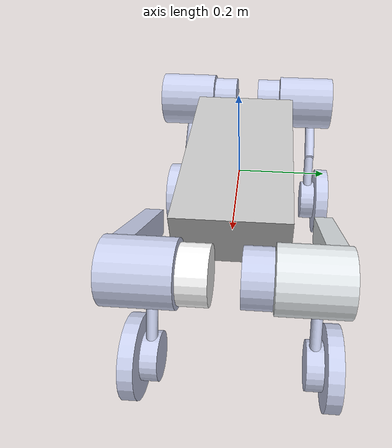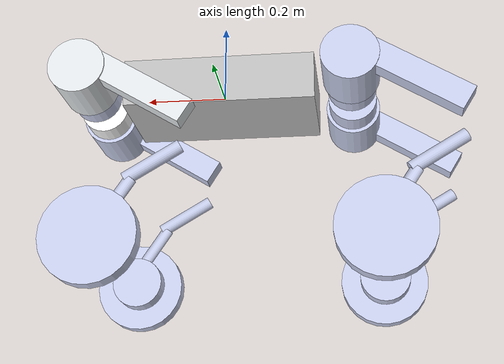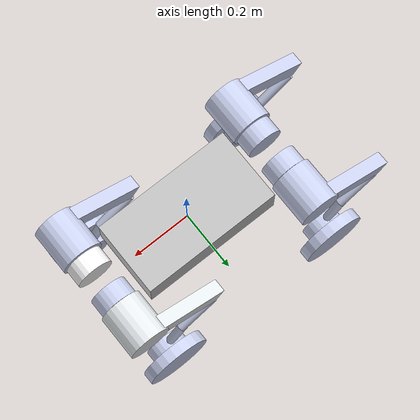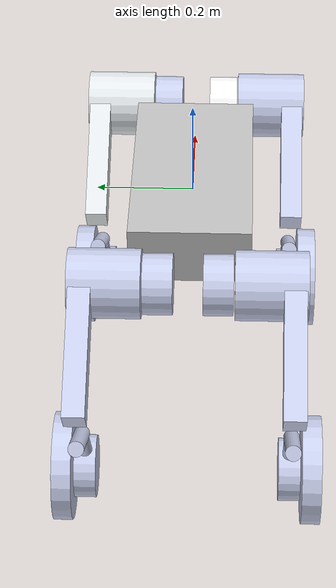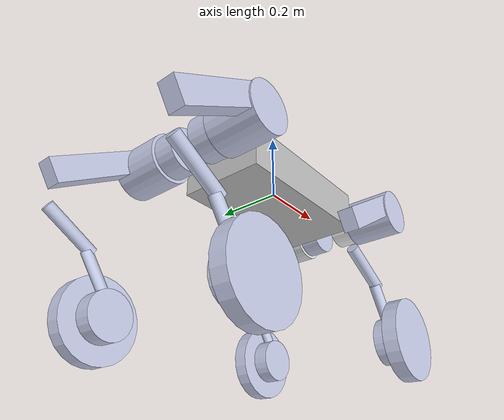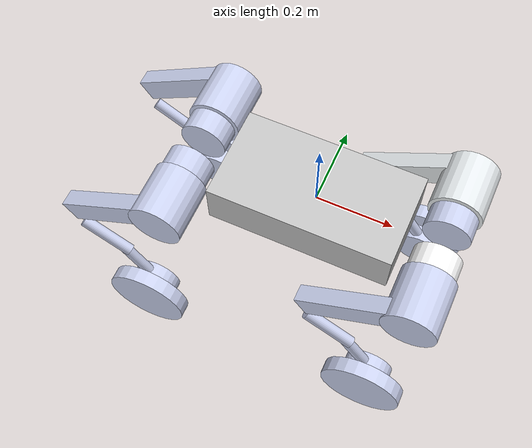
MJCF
<mujoco model="dogurdf">
  <compiler angle="radian"/>

  <worldbody>
    <geom size="0.237 0.125 0.06" type="box" rgba="0.75294 0.75294 0.75294 1"/>
    <body name="FL_hip_link" pos="0.3265 0.08 0">
      <inertial pos="-0.0096559 -0.00827404 0.00195208" quat="0.442032 0.549064 0.445917 0.551629" mass="0.297184" diaginertia="0.0007981 0.000673316 0.000408584"/>
      <joint name="FL_hip_joint" pos="0 0 0" axis="1 0 0" range="-0.6 0.6" actuatorfrcrange="-300 300"/>
      <geom size="0.0615 0.03" pos="0 -0.02 0" quat="0.707105 0.707108 0 0" type="cylinder" rgba="0.792157 0.819608 0.933333 1"/>
      <body name="FL_thigh_link" pos="0 0.1308 0" quat="0.872818 0 0.488046 0">
        <inertial pos="-0.00631688 -0.0499256 -0.035101" quat="0.997918 -0.000570014 0.0642028 -0.00618484" mass="1.70741" diaginertia="0.0230849 0.0175775 0.00888118"/>
        <joint name="FL_thigh_joint" pos="0 0 0" axis="0 1 0" range="-0.7 1.75" actuatorfrcrange="-300 300"/>
        <geom size="0.07 0.0725" pos="0 -0.046 0" quat="0.707105 0.707108 0 0" type="cylinder" rgba="0.898039 0.917647 0.929412 1"/>
        <geom size="0.032 0.0225 0.15" pos="-0.03 0 -0.145" type="box" rgba="0.898039 0.917647 0.929412 1"/>
        <body name="FL_calf_link" pos="0 0 -0.34" quat="0.51675 -1.24664e-06 -0.856137 1.24664e-06">
          <inertial pos="-0.061645 0.0071922 -0.21635" quat="0.727889 0.125575 0.105269 0.665828" mass="0.47973" diaginertia="0.00987517 0.00953622 0.000517505"/>
          <joint name="FL_calf_joint" pos="0 0 0" axis="0 1 0" range="-1 0.35" actuatorfrcrange="-300 300"/>
          <geom size="0.016 0.075" pos="-0.01 0 -0.12" type="cylinder" rgba="0.79216 0.81961 0.93333 1"/>
          <geom size="0.015 0.065" pos="-0.045 0 -0.24" quat="0.974794 0 0.223106 0" type="cylinder" rgba="0.79216 0.81961 0.93333 1"/>
          <geom size="0.065 0.0225" pos="-0.105 0 -0.32" quat="0.707107 0.707107 0 0" type="cylinder" rgba="0.79216 0.81961 0.93333 1"/>
          <body name="FL_wheel_link" pos="-0.10583 0.045 -0.32311" quat="0.994159 0 -0.107924 0">
            <inertial pos="-1.56973e-06 0.00208085 9.8644e-08" quat="0.544557 0.451063 0.451063 0.544557" mass="0.581037" diaginertia="0.00482401 0.00246789 0.00246783"/>
            <joint name="FL_wheel_joint" pos="0 0 0" axis="0 1 0"/>
            <geom size="0.113 0.02" quat="0.707107 0.707107 0 0" type="cylinder" rgba="0.792157 0.819608 0.933333 1"/>
          </body>
        </body>
      </body>
    </body>
    <body name="FR_hip_link" pos="0.3265 -0.08 0">
      <inertial pos="-0.0096559 0.00827404 -0.00195208" quat="0.442032 0.549064 0.445917 0.551629" mass="0.297184" diaginertia="0.0007981 0.000673316 0.000408584"/>
      <joint name="FR_hip_joint" pos="0 0 0" axis="1 0 0" range="-0.6 0.6" actuatorfrcrange="-300 300"/>
      <geom size="0.0615 0.03" pos="0 0.02 0" quat="0.707105 0.707108 0 0" type="cylinder" rgba="1 1 1 1"/>
      <body name="FR_thigh_link" pos="0 -0.1308 0" quat="0.872818 0 0.488046 0">
        <inertial pos="-0.00575184 0.0497359 -0.0354219" quat="0.997948 0.000647994 0.0640072 -0.00184196" mass="1.69997" diaginertia="0.0230167 0.017542 0.00878115"/>
        <joint name="FR_thigh_joint" pos="0 0 0" axis="0 1 0" range="-0.7 1.75" actuatorfrcrange="-300 300"/>
        <geom size="0.07 0.0725" pos="0 0.046 0" quat="0.707105 0.707108 0 0" type="cylinder" rgba="0.792157 0.819608 0.933333 1"/>
        <geom size="0.032 0.0225 0.15" pos="-0.03 0 -0.145" type="box" rgba="0.792157 0.819608 0.933333 1"/>
        <body name="FR_calf_link" pos="0 0 -0.34" quat="0.51675 1.24664e-06 -0.856137 -1.24664e-06">
          <inertial pos="-0.0616455 -0.00719221 -0.216353" quat="0.665817 0.105272 0.125575 0.727899" mass="0.479729" diaginertia="0.00987519 0.0095363 0.000517505"/>
          <joint name="FR_calf_joint" pos="0 0 0" axis="0 1 0" range="-1 0.35" actuatorfrcrange="-300 300"/>
          <geom size="0.016 0.075" pos="-0.01 0 -0.12" type="cylinder" rgba="0.792157 0.819608 0.933333 1"/>
          <geom size="0.015 0.065" pos="-0.045 0 -0.24" quat="0.974794 0 0.223106 0" type="cylinder" rgba="0.792157 0.819608 0.933333 1"/>
          <geom size="0.065 0.0225" pos="-0.105 0 -0.32" quat="0.707107 0.707107 0 0" type="cylinder" rgba="0.792157 0.819608 0.933333 1"/>
          <body name="FR_wheel_link" pos="-0.10583 -0.045 -0.32311" quat="0.994159 0 -0.107924 0">
            <inertial pos="3.51522e-07 -0.00208095 7.86999e-07" quat="0.689728 0.155807 0.155807 0.689728" mass="0.581021" diaginertia="0.00482391 0.00246785 0.00246778"/>
            <joint name="FR_wheel_joint" pos="0 0 0" axis="0 1 0"/>
            <geom size="0.113 0.02" quat="0.707107 0.707107 0 0" type="cylinder" rgba="0.792157 0.819608 0.933333 1"/>
          </body>
        </body>
      </body>
    </body>
    <body name="RL_hip_link" pos="-0.3265 0.08 0">
      <inertial pos="0.0096559 -0.008274 -0.0019521" quat="0.551629 0.445917 0.549064 0.442032" mass="0.29718" diaginertia="0.0007981 0.000673316 0.000408584"/>
      <joint name="RL_hip_joint" pos="0 0 0" axis="1 0 0" range="-0.6 0.6" actuatorfrcrange="-300 300"/>
      <geom size="0.0615 0.03" pos="0 -0.02 0" quat="0.707105 0.707108 0 0" type="cylinder" rgba="0.79216 0.81961 0.93333 1"/>
      <body name="RL_thigh_link" pos="0 0.1308 0" quat="0.872818 0 0.488046 0">
        <inertial pos="-0.00544375 -0.0499256 -0.0352819" quat="0.997919 -0.000141419 0.0642039 0.00591364" mass="1.70741" diaginertia="0.0230848 0.0175775 0.00888117"/>
        <joint name="RL_thigh_joint" pos="0 0 0" axis="0 1 0" range="-0.7 1.75" actuatorfrcrange="-300 300"/>
        <geom size="0.07 0.0725" pos="0 -0.046 0" quat="0.707105 0.707108 0 0" type="cylinder" rgba="0.792157 0.819608 0.933333 1"/>
        <geom size="0.032 0.0225 0.15" pos="-0.03 0 -0.145" type="box" rgba="0.792157 0.819608 0.933333 1"/>
        <body name="RL_calf_link" pos="0 0 -0.34" quat="0.51675 -1.24664e-06 -0.856137 1.24664e-06">
          <inertial pos="-0.061645 0.0071922 -0.21635" quat="0.727889 0.125575 0.105269 0.665828" mass="0.47973" diaginertia="0.00987517 0.00953622 0.000517505"/>
          <joint name="RL_calf_joint" pos="0 0 0" axis="0 1 0" range="-1 0.35" actuatorfrcrange="-300 300"/>
          <geom size="0.016 0.075" pos="-0.01 0 -0.12" type="cylinder" rgba="0.79216 0.81961 0.93333 1"/>
          <geom size="0.015 0.065" pos="-0.045 0 -0.24" quat="0.974794 0 0.223106 0" type="cylinder" rgba="0.79216 0.81961 0.93333 1"/>
          <geom size="0.065 0.0225" pos="-0.105 0 -0.32" quat="0.707107 0.707107 0 0" type="cylinder" rgba="0.79216 0.81961 0.93333 1"/>
          <body name="RL_wheel_link" pos="-0.10583 0.045 -0.32311" quat="0.994159 0 -0.107924 0">
            <inertial pos="9.84842e-08 0.00208085 1.56944e-06" quat="0.705386 -0.0493046 -0.0493046 0.705386" mass="0.581037" diaginertia="0.00482401 0.00246789 0.00246783"/>
            <joint name="RL_wheel_joint" pos="0 0 0" axis="0 1 0"/>
            <geom size="0.113 0.02" quat="0.707107 0.707107 0 0" type="cylinder" rgba="0.792157 0.819608 0.933333 1"/>
          </body>
        </body>
      </body>
    </body>
    <body name="RR_hip_link" pos="-0.3265 -0.08 0">
      <inertial pos="0.0096559 0.00827404 0.00195208" quat="0.549064 0.442032 0.551629 0.445917" mass="0.297184" diaginertia="0.0007981 0.000673316 0.000408584"/>
      <joint name="RR_hip_joint" pos="0 0 0" axis="1 0 0" range="-0.6 0.6" actuatorfrcrange="-300 300"/>
      <geom size="0.0615 0.03" pos="0 0.02 0" quat="0.707105 0.707108 0 0" type="cylinder" rgba="0.792157 0.819608 0.933333 1"/>
      <body name="RR_thigh_link" pos="0 -0.1308 0" quat="0.872818 0 0.488046 0">
        <inertial pos="-0.00615816 0.0499256 -0.0348428" quat="0.997972 -0.00211711 0.063465 0.00450001" mass="1.70741" diaginertia="0.0231084 0.017578 0.00885714"/>
        <joint name="RR_thigh_joint" pos="0 0 0" axis="0 1 0" range="-0.7 1.75" actuatorfrcrange="-300 300"/>
        <geom size="0.07 0.0725" pos="0 0.046 0" quat="0.707105 0.707108 0 0" type="cylinder" rgba="0.792157 0.819608 0.933333 1"/>
        <geom size="0.032 0.0225 0.15" pos="-0.03 0 -0.145" type="box" rgba="0.792157 0.819608 0.933333 1"/>
        <body name="RR_calf_link" pos="0 0 -0.34" quat="0.51675 1.24664e-06 -0.856137 -1.24664e-06">
          <inertial pos="-0.0616455 -0.00719221 -0.216353" quat="0.665817 0.105272 0.125575 0.727899" mass="0.479729" diaginertia="0.00987519 0.0095363 0.000517505"/>
          <joint name="RR_calf_joint" pos="0 0 0" axis="0 1 0" range="-1 0.35" actuatorfrcrange="-300 300"/>
          <geom size="0.016 0.075" pos="-0.01 0 -0.12" type="cylinder" rgba="0.792157 0.819608 0.933333 1"/>
          <geom size="0.015 0.065" pos="-0.045 0 -0.24" quat="0.974794 0 0.223106 0" type="cylinder" rgba="0.792157 0.819608 0.933333 1"/>
          <geom size="0.065 0.0225" pos="-0.105 0 -0.32" quat="0.707107 0.707107 0 0" type="cylinder" rgba="0.792157 0.819608 0.933333 1"/>
          <body name="RR_wheel_link" pos="-0.10583 -0.045 -0.32311" quat="0.994159 0 -0.107924 0">
            <inertial pos="-5.05763e-07 -0.00208095 6.9794e-07" quat="0.675226 -0.209928 -0.209928 0.675226" mass="0.581021" diaginertia="0.00482391 0.00246785 0.00246778"/>
            <joint name="RR_wheel_joint" pos="0 0 0" axis="0 1 0"/>
            <geom size="0.113 0.02" quat="0.707107 0.707107 0 0" type="cylinder" rgba="0.792157 0.819608 0.933333 1"/>
          </body>
        </body>
      </body>
    </body>
  </worldbody>
</mujoco>
